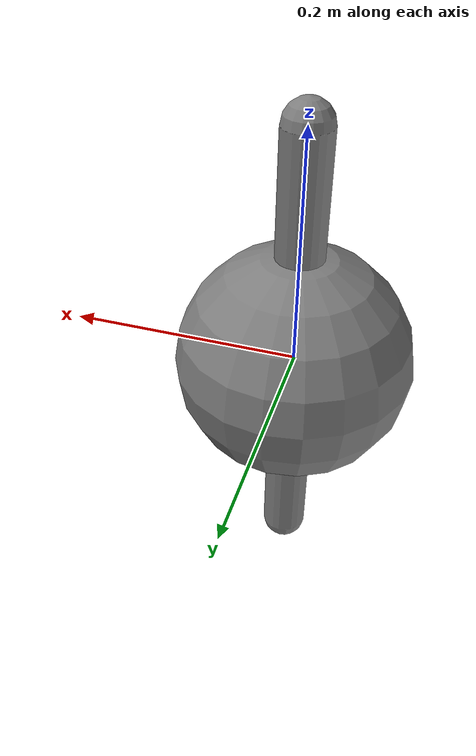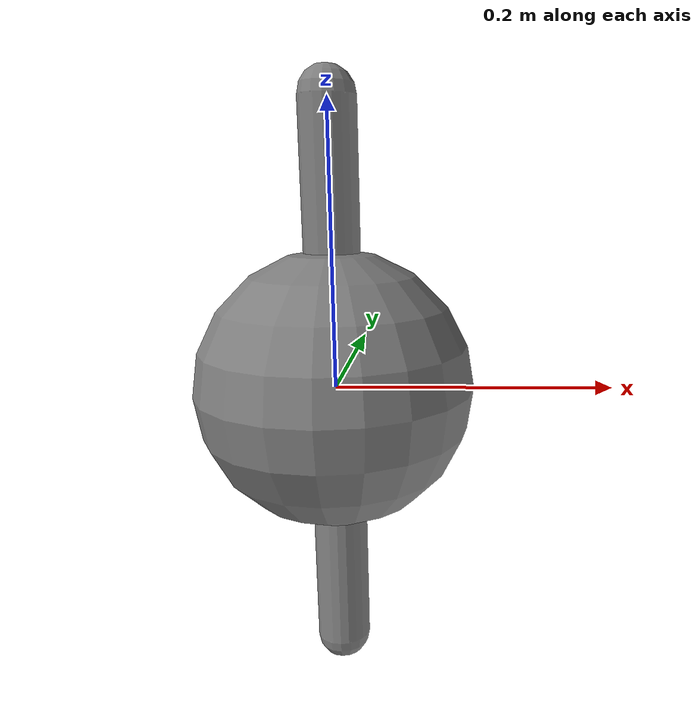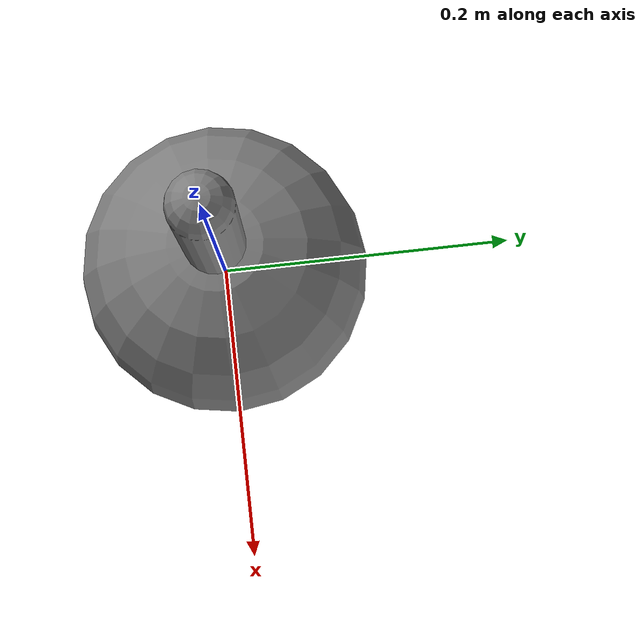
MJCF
<mujoco>
            <worldbody>
                <body name="b1">
                    <joint name="j1" type="hinge" axis="0 1 0"/>
                    <geom name="ball" type="sphere" size="0.1" mass="1"/>
                    <geom name="rod" type="capsule" size="0.02 0.2" mass="0.5"/>
                </body>
            </worldbody>
        </mujoco>
